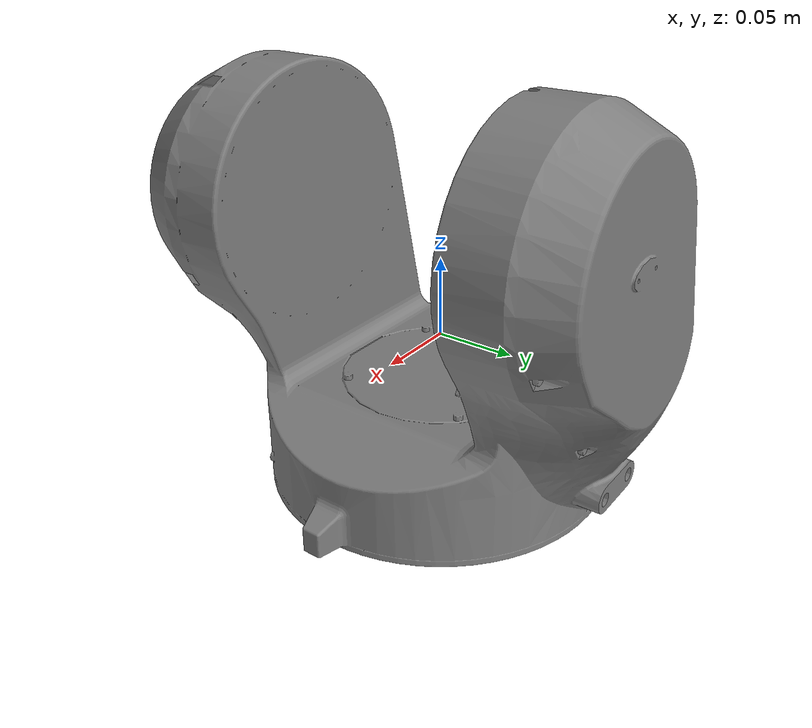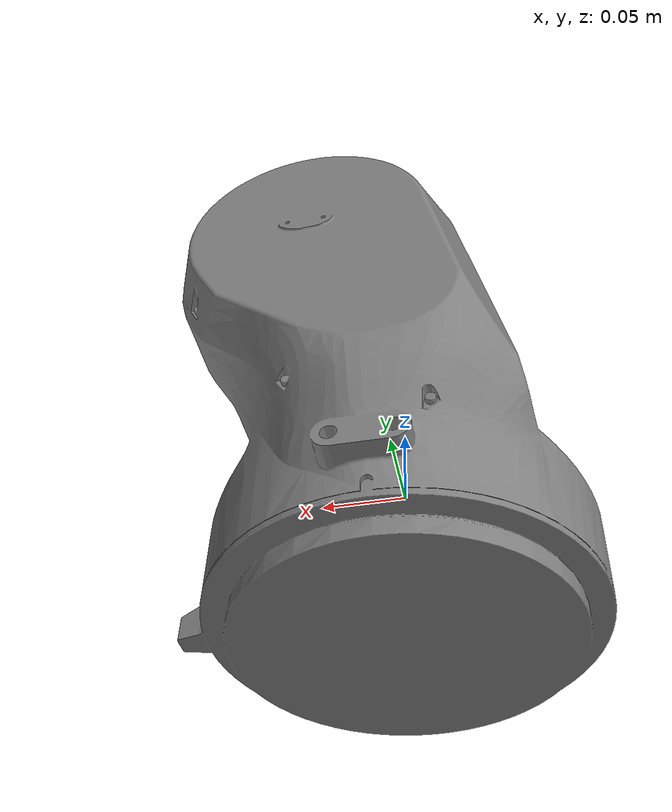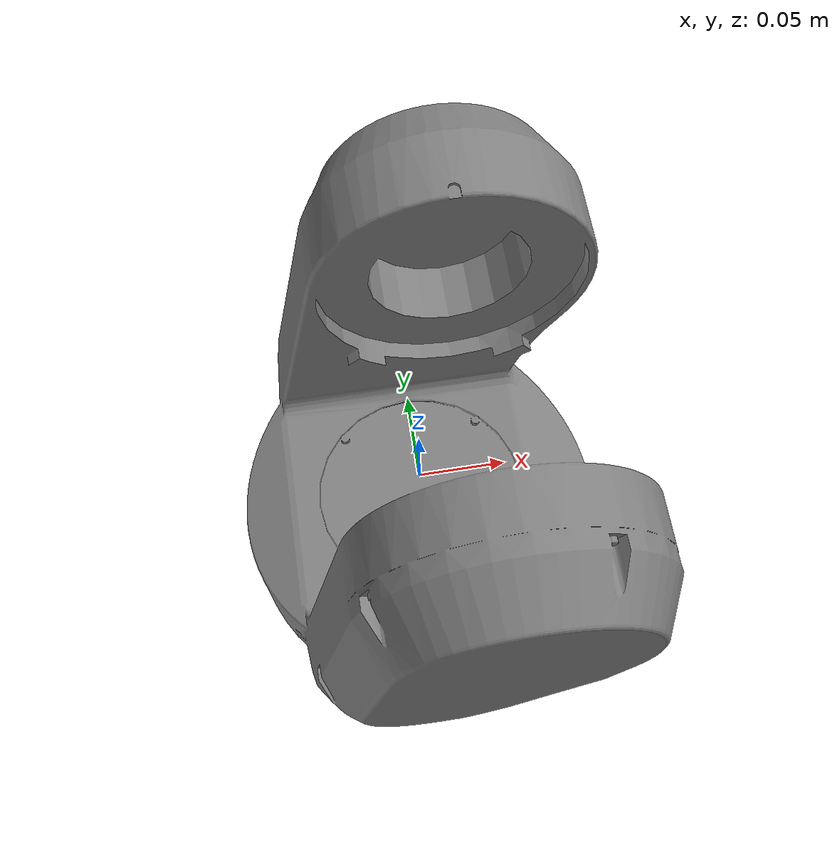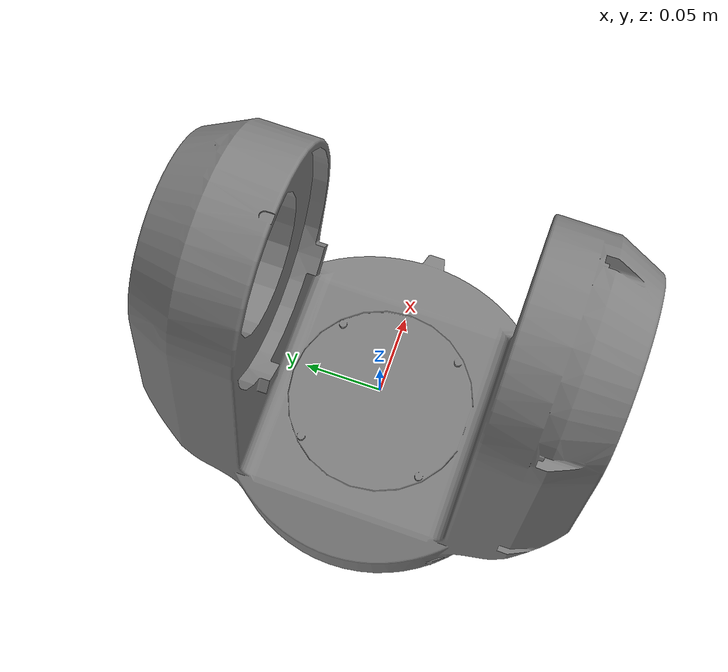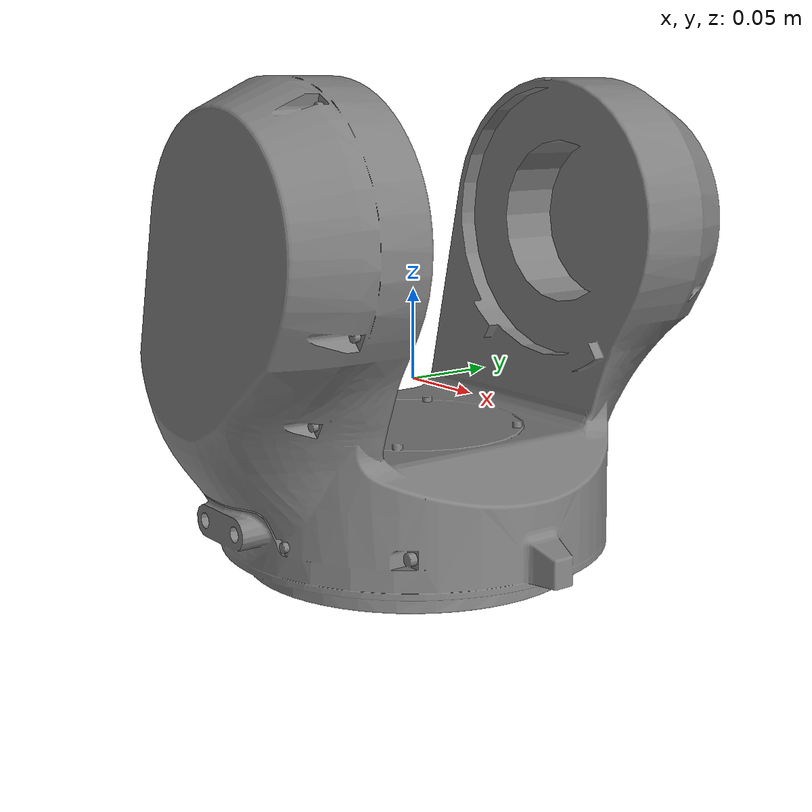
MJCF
<mujoco model="workpiece_link1">
	<compiler angle="radian" strippath="true" autolimits="true" inertiafromgeom="true" />
	<include file="../common/default.xml" />
    <asset>
        <mesh name="workpiece_link1" file="../assets/workpiece_link1.STL"  />

    </asset>
	<worldbody>
		<body name="workpiece_link1" pos="0 0 0.085" euler="0 0 0">
			<geom name="workpiece_link1" type="mesh" mesh="workpiece_link1" pos="0 0 0" euler="0 0 0" />
			<inertial mass="20.785564459096108" pos="0.031938715255495936 0.005909402584978495 0.009300344506818702" fullinertia="0.5281649413648726 0.28005570098644017 0.2698861094601719 -0.000565750064491712 0.003926482942242371 0.022469408437196376" />
		</body>
	</worldbody>
</mujoco>

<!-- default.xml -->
<mujoco>
    <default>

        <default class="ur5e">
            <material specular="0.5" shininess="0.25"/>
            <joint axis="0 1 0" range="-6.28319 6.28319" armature="0.1"/>
            <general gaintype="fixed" biastype="affine" ctrlrange="-6.2831 6.2831" gainprm="2000" biasprm="0 -2000 -200" forcerange="-150 150"/>
            <site size="0.001" rgba="0.5 0.5 0.5 0.3" group="4"/>
        </default>

        <default class="visual">
            <geom type="mesh" contype="0" conaffinity="0" group="2" rgba="1 1 1 1"/>
        </default>

        <default class="collision">
            <geom  type="mesh" contype="1" conaffinity="1" group="2" rgba="1 1 1 1"/>
        </default>
    </default>
</mujoco>
